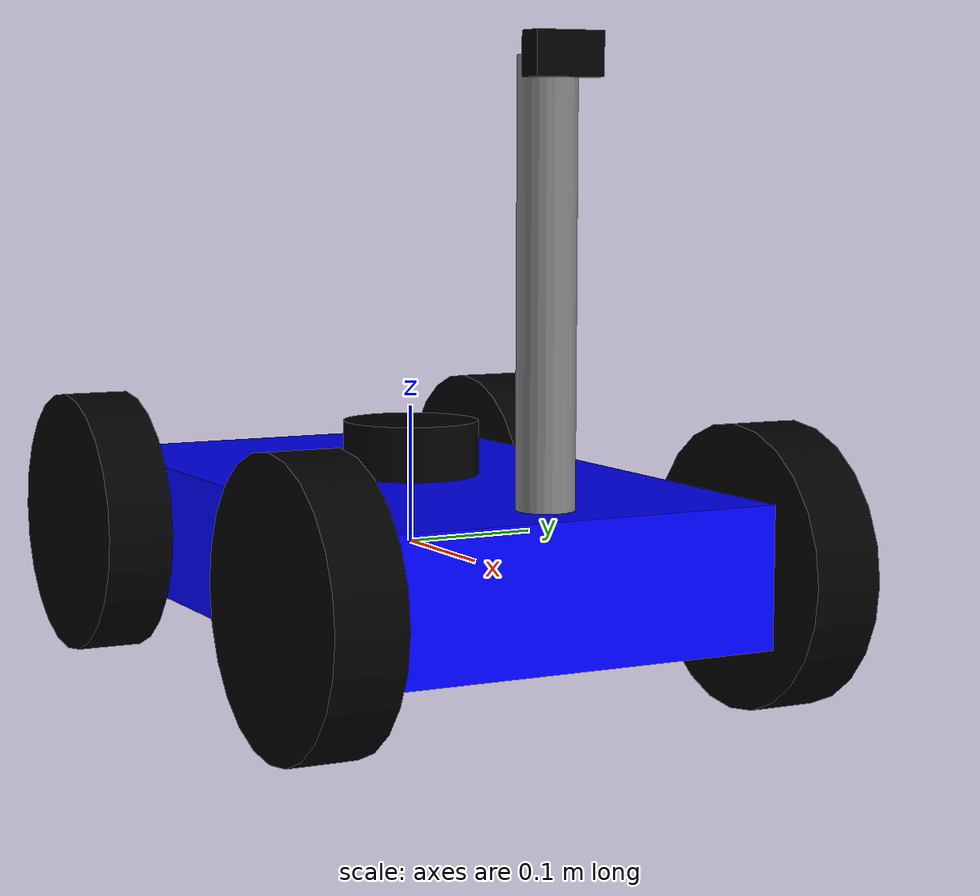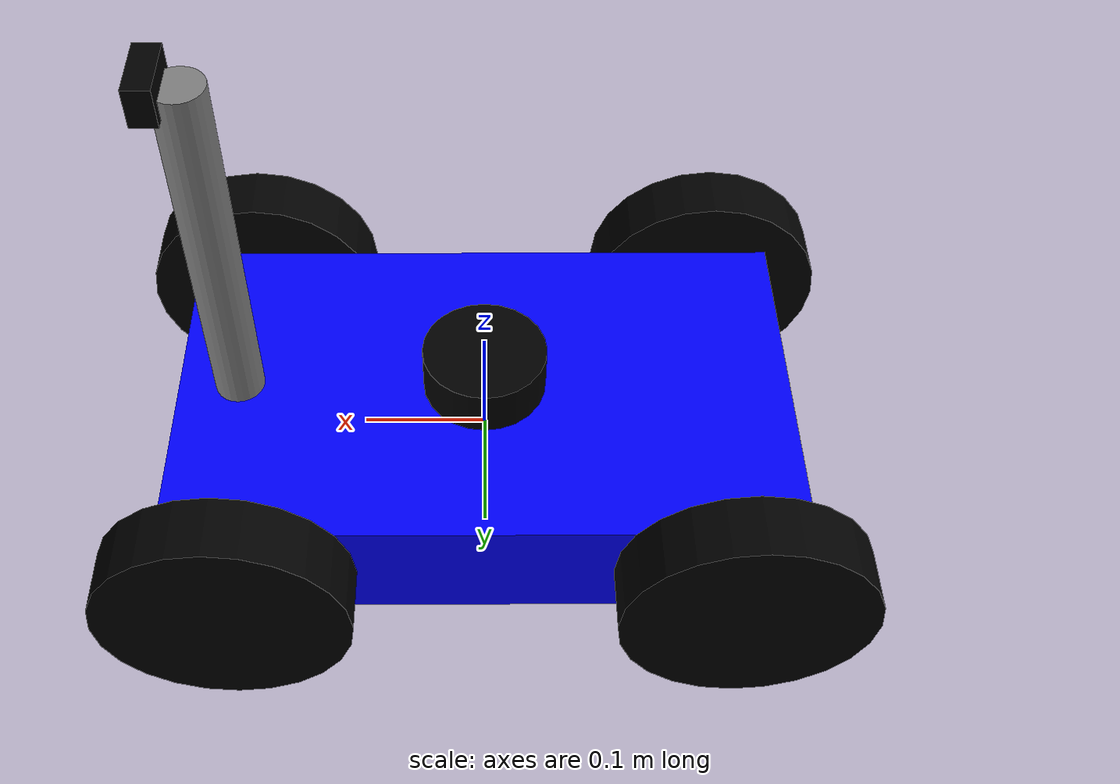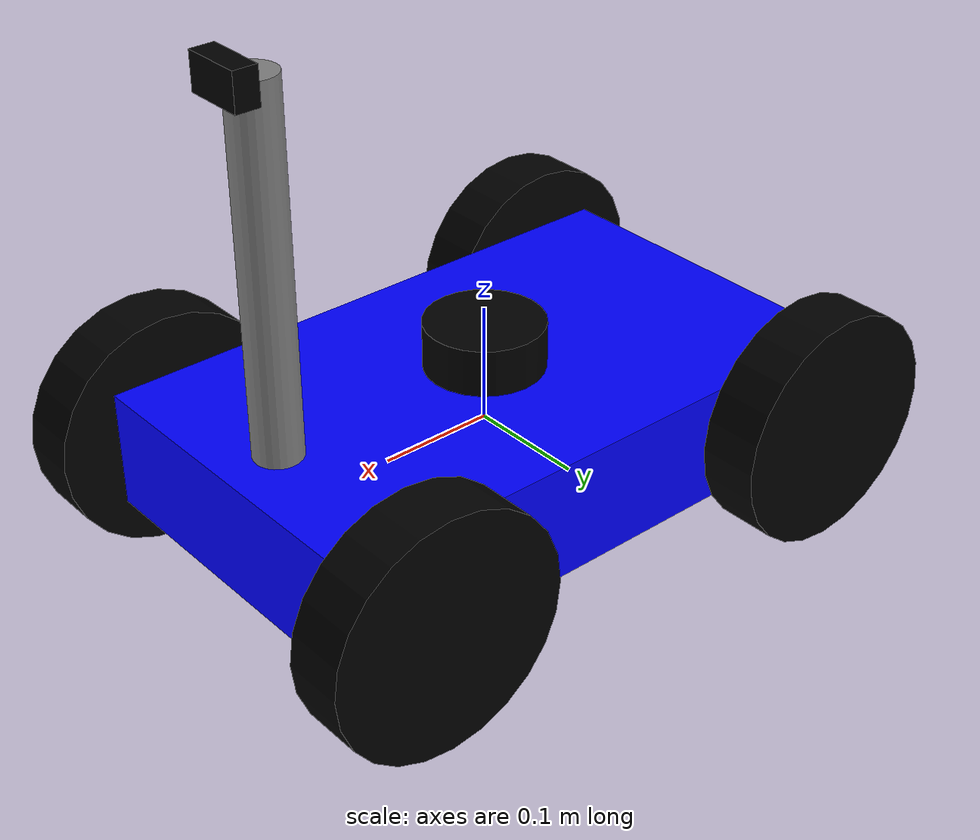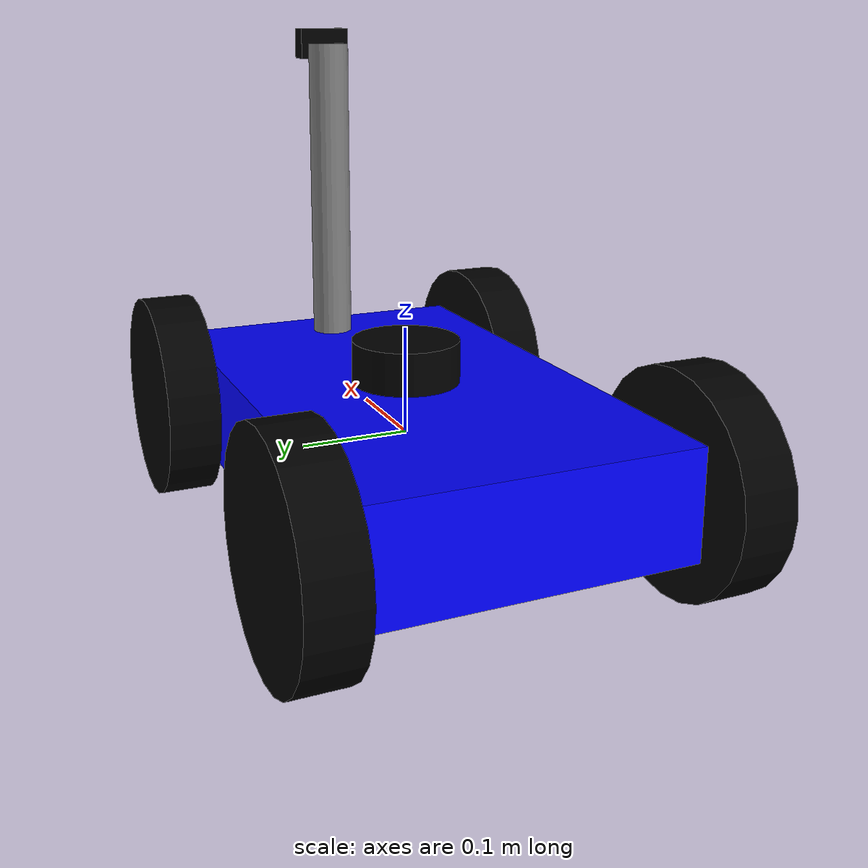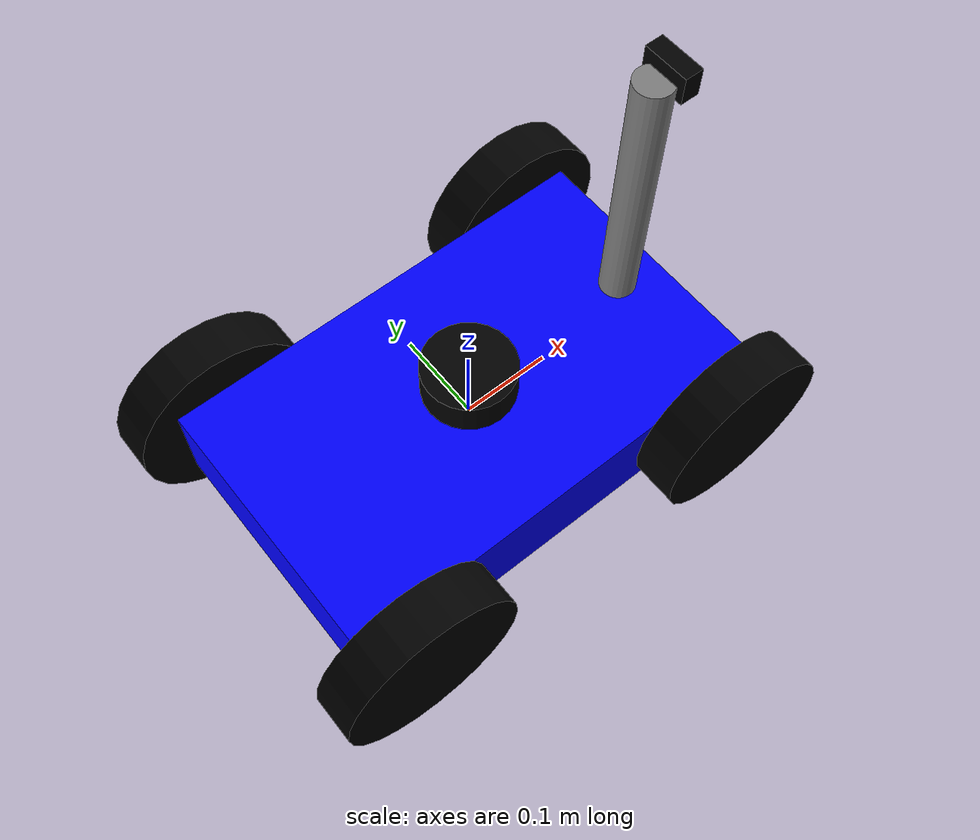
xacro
<?xml version="1.0"?>
<robot xmlns:xacro="http://www.ros.org/wiki/xacro" name="my_rover">

  <xacro:property name="chassis_length" value="0.5"/>
  <xacro:property name="chassis_width" value="0.3"/>
  <link name="dummy_root"/>

  <joint name="dummy_joint" type="fixed">
    <parent link="dummy_root"/>
    <child link="base_link"/>
  </joint>

  <link name="base_link">
    <visual>
      <geometry><box size="${chassis_length} ${chassis_width} 0.1"/></geometry>
      <material name="blue"><color rgba="0 0 1 1"/></material>
    </visual>
    <collision>
      <geometry><box size="${chassis_length} ${chassis_width} 0.1"/></geometry>
    </collision>
    <inertial>
      <mass value="5.0"/>
      <inertia ixx="0.1" ixy="0.0" ixz="0.0" iyy="0.1" iyz="0.0" izz="0.1"/>
    </inertial>
  </link>

<xacro:macro name="wheel" params="prefix x_reflect y_reflect">

    <link name="${prefix}_wheel">
      <visual>
        <geometry><cylinder radius="0.1" length="0.05"/></geometry>
        <material name="black"><color rgba="0 0 0 1"/></material>
      </visual>
      <collision>
        <geometry><cylinder radius="0.1" length="0.05"/></geometry>
      </collision>
      <inertial>
        <mass value="1.0"/>
        <inertia ixx="0.01" ixy="0.0" ixz="0.0" iyy="0.01" iyz="0.0" izz="0.01"/>
      </inertial>
    </link>

    <joint name="${prefix}_wheel_joint" type="continuous">
      <parent link="base_link"/>
      <child link="${prefix}_wheel"/>
      <origin xyz="${x_reflect*0.2} ${y_reflect*0.175} 0" rpy="1.57 0 0"/>
      <axis xyz="0 0 1"/>
    </joint>

    <gazebo reference="${prefix}_wheel">
      <mu1>1.0</mu1> <mu2>0.05</mu2> </gazebo>

  </xacro:macro>

  <xacro:wheel prefix="front_left" x_reflect="1" y_reflect="1" />
  <xacro:wheel prefix="front_right" x_reflect="1" y_reflect="-1" />
  <xacro:wheel prefix="rear_left" x_reflect="-1" y_reflect="1" />
  <xacro:wheel prefix="rear_right" x_reflect="-1" y_reflect="-1" />

  <link name="arm_link">
    <visual>
      <origin xyz="0 0 0.15" rpy="0 0 0"/>
      <geometry><cylinder radius="0.02" length="0.3"/></geometry>
      <material name="grey"><color rgba="0.5 0.5 0.5 1"/></material>
    </visual>
    <collision>
      <origin xyz="0 0 0.15" rpy="0 0 0"/>
      <geometry><cylinder radius="0.02" length="0.3"/></geometry>
    </collision>
    <inertial>
      <origin xyz="0 0 0.15" rpy="0 0 0"/>
      <mass value="0.5"/>
      <inertia ixx="0.001" ixy="0.0" ixz="0.0" iyy="0.001" iyz="0.0" izz="0.001"/>
    </inertial>
  </link>

  <joint name="arm_joint" type="revolute">
    <parent link="base_link"/>
    <child link="arm_link"/>
    <origin xyz="0.2 0 0.05" rpy="0 0 0"/>
    <axis xyz="0 1 0"/>
    <limit lower="-1.57" upper="1.57" effort="10.0" velocity="1.0"/>
    <dynamics damping="1.0" friction="0.5"/>
  </joint>

  <link name="camera_link">
    <visual>
      <geometry><box size="0.02 0.05 0.03"/></geometry>
      <material name="black"><color rgba="0 0 0 1"/></material>
    </visual>
    <inertial>
      <mass value="0.1"/>
      <inertia ixx="0.01" ixy="0" ixz="0" iyy="0.01" iyz="0" izz="0.01"/>
    </inertial>
  </link>

  <joint name="camera_joint" type="fixed">
    <parent link="arm_link"/>
    <child link="camera_link"/>
    <origin xyz="0.02 0 0.3" rpy="0 0 0"/>
  </joint>

  <link name="camera_optical_link"/>

  <joint name="camera_optical_joint" type="fixed">
    <parent link="camera_link"/>
    <child link="camera_optical_link"/>
    <origin xyz="0 0 0" rpy="-1.57 0 -1.57"/>
  </joint>

  <link name="lidar_link">
    <visual>
      <geometry><cylinder radius="0.05" length="0.04"/></geometry>
      <material name="black"><color rgba="0 0 0 1"/></material>
    </visual>
    <inertial>
      <mass value="0.1"/>
      <inertia ixx="0.01" ixy="0" ixz="0" iyy="0.01" iyz="0" izz="0.01"/>
    </inertial>
  </link>

  <joint name="lidar_joint" type="fixed">
    <parent link="base_link"/>
    <child link="lidar_link"/>
    <origin xyz="0 0 0.07" rpy="0 0 0"/>
  </joint>

  <link name="imu_link"/> <joint name="imu_joint" type="fixed">
    <parent link="base_link"/>
    <child link="imu_link"/>
    <origin xyz="0 0 0" rpy="0 0 0"/>
  </joint>

  <gazebo reference="camera_link">
    <sensor type="camera" name="rover_camera">
      <always_on>1</always_on>
      <topic>/camera/image_raw</topic>
      <update_rate>30.0</update_rate>
      <visualize>true</visualize>
      <camera name="head">
        <horizontal_fov>1.3962634</horizontal_fov>
        <image>
          <width>800</width>
          <height>800</height>
          <format>R8G8B8</format>
        </image>
        <clip>
          <near>0.02</near>
          <far>300</far>
        </clip>
      </camera>
    </sensor>
  </gazebo>

  <gazebo reference="lidar_link">
    <sensor type="gpu_lidar" name="rover_lidar">
      <always_on>1</always_on>
      <topic>/scan</topic>
      <ignition_frame_id>lidar_link</ignition_frame_id>
      <update_rate>10.0</update_rate>
      <visualize>true</visualize>
      <ray>
        <scan>
          <horizontal>
            <samples>640</samples>
            <resolution>1</resolution>
            <min_angle>-3.14159</min_angle>
            <max_angle>3.14159</max_angle>
          </horizontal>
        </scan>
        <range>
          <min>0.08</min>
          <max>12.0</max>
        </range>
      </ray>
    </sensor>
  </gazebo>

  <gazebo reference="imu_link">
    <sensor type="imu" name="rover_imu">
      <always_on>1</always_on>
      <topic>/imu/data</topic>
      <update_rate>100.0</update_rate>
      <visualize>true</visualize>
    </sensor>
  </gazebo>

  <gazebo>
    <plugin filename="libignition-gazebo-diff-drive-system.so" name="ignition::gazebo::systems::DiffDrive">
      <left_joint>front_left_wheel_joint</left_joint>
      <left_joint>rear_left_wheel_joint</left_joint>
      <right_joint>front_right_wheel_joint</right_joint>
      <right_joint>rear_right_wheel_joint</right_joint>

      <wheel_separation>0.35</wheel_separation>
      <wheel_radius>0.1</wheel_radius>

      <topic>cmd_vel</topic>
      <odom_publish_frequency>50</odom_publish_frequency>
      <frame_id>odom</frame_id>
      <child_frame_id>base_link</child_frame_id>
    </plugin>
  </gazebo>

  <ros2_control name="IgnitionSystem" type="system">
    <hardware>
      <plugin>ign_ros2_control/IgnitionSystem</plugin>
    </hardware>

    <joint name="arm_joint">
      <command_interface name="position"/>
      <state_interface name="position"/>
      <state_interface name="velocity"/>
    </joint>

    <joint name="front_left_wheel_joint">
      <state_interface name="position"/>
      <state_interface name="velocity"/>
    </joint>
    <joint name="front_right_wheel_joint">
      <state_interface name="position"/>
      <state_interface name="velocity"/>
    </joint>
    <joint name="rear_left_wheel_joint">
      <state_interface name="position"/>
      <state_interface name="velocity"/>
    </joint>
    <joint name="rear_right_wheel_joint">
      <state_interface name="position"/>
      <state_interface name="velocity"/>
    </joint>
  </ros2_control>

  <gazebo>
    <plugin filename="libign_ros2_control-system.so" name="ign_ros2_control::IgnitionROS2ControlPlugin">
      <parameters>$(find my_robot_package)/config/ros2_controllers.yaml</parameters>
    </plugin>
  </gazebo>

  <gazebo>
    <plugin filename="libignition-gazebo-joint-state-publisher-system.so"
            name="ignition::gazebo::systems::JointStatePublisher">
    </plugin>
  </gazebo>

</robot>
